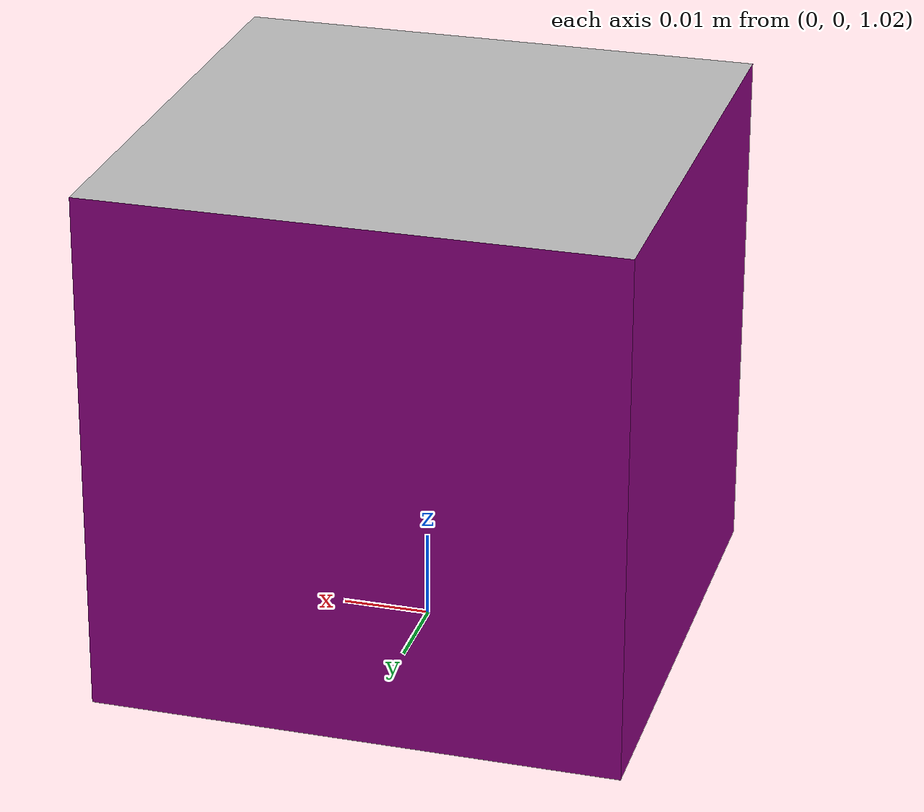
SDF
<?xml version='1.0'?>
<sdf version='1.4'>
  <model name="64_tag">
    <static>false</static>
    <pose>0 0 0 0 0 0</pose>

    <link name="64_tag">
      <pose>0 0 1.05 0 0 0</pose>
      <visual name="mat">
        <geometry>
          <mesh>
            <uri>model://64cube/64_tag.dae</uri>
          </mesh>
        </geometry>
      </visual>
    </link>

  </model>
</sdf>
